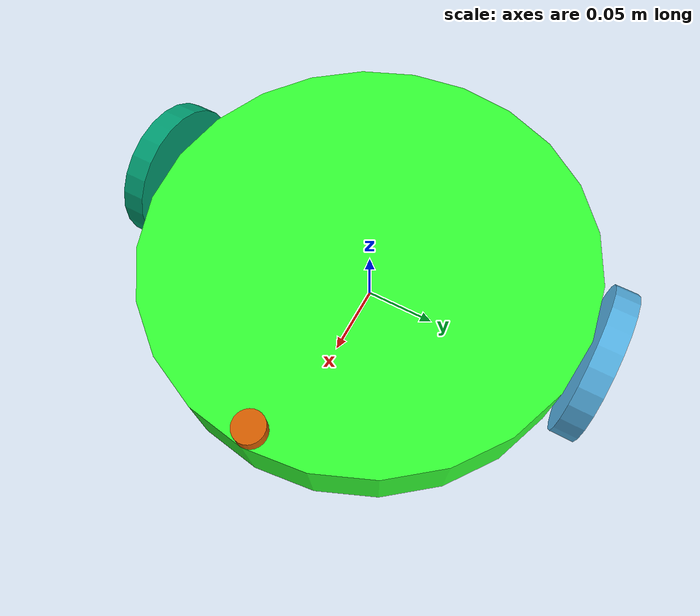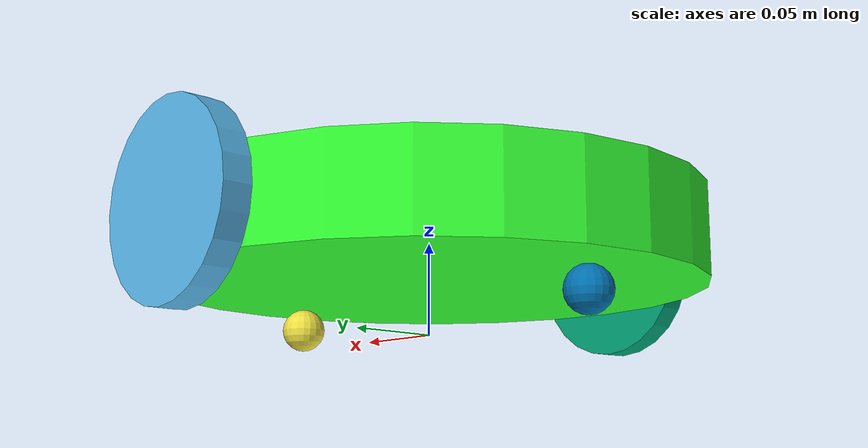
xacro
<?xml version="1.0"?>
<robot xmlns:xacro="http://www.ros.org/wiki/xacro" name="basic_robot">

    <xacro:property name="base_mass" value="1.00"/>
    <xacro:property name="base_radius" value=".150"/>
    <xacro:property name="base_thickness" value=".050"/>

    <xacro:property name="wheel_mass" value="0.10"/>
    <xacro:property name="turtle_wheel_radius" value=".050"/>
    <xacro:property name="turtle_wheel_length" value=".015"/>

    <xacro:property name="caster_mass" value="0.001"/>
    <xacro:property name="caster_radius" value="${(turtle_wheel_radius-base_thickness/2.0)/2.0}"/>

    <xacro:property name="lidar_mass" value="0.001"/>
    <xacro:property name="lidar_length" value="0.01"/>
    <xacro:property name="lidar_radius" value="0.01"/>

    <link name="base_link">
        <visual>
            <geometry>
                <cylinder length="${base_thickness}" radius="${base_radius}"/>
            </geometry>
            <material name="green">
                <color rgba="0.2 1.0 0.2 1"/>
            </material>
        </visual>
        <collision>
                <geometry>
                    <cylinder length="${base_thickness}" radius="${base_radius}"/>
                </geometry>
        </collision>
        <inertial>
            <mass value="${base_mass}"/>
            <inertia
                ixx="${(1.0/12.0) * base_mass * (3*base_radius*base_radius + base_thickness*base_thickness)}"
                iyy="${(1.0/12.0) * base_mass * (3*base_radius*base_radius + base_thickness*base_thickness)}"
                izz="${0.5 * base_mass * base_radius*base_radius}"
                ixy="0" ixz="0" iyz="0"/>
        </inertial>
    </link>

    <link name="left_wheel">
        <visual>
            <geometry>
                <cylinder length="${turtle_wheel_length}" radius="${turtle_wheel_radius}"/>
            </geometry>
        </visual>
        <collision>
                <geometry>
                    <cylinder length="${turtle_wheel_length}" radius="${turtle_wheel_radius}"/>
                </geometry>
        </collision>
        <inertial>
            <mass value="${wheel_mass}"/>
            <inertia
                ixx="${(1.0/12.0) * wheel_mass * (3*turtle_wheel_radius*turtle_wheel_radius + turtle_wheel_length*turtle_wheel_length)}"
                iyy="${(1.0/12.0) * wheel_mass * (3*turtle_wheel_radius*turtle_wheel_radius + turtle_wheel_length*turtle_wheel_length)}"
                izz="${0.5 * wheel_mass * turtle_wheel_radius*turtle_wheel_radius}"
                ixy="0" ixz="0" iyz="0"/>
        </inertial>
    </link>

    <link name="right_wheel">
        <visual>
            <geometry>
                <cylinder length="${turtle_wheel_length}" radius="${turtle_wheel_radius}"/>
            </geometry>
        </visual>
        <collision>
                <geometry>
                    <cylinder length="${turtle_wheel_length}" radius="${turtle_wheel_radius}"/>
                </geometry>
        </collision>
        <inertial>
            <mass value="${wheel_mass}"/>
            <inertia
                ixx="${(1.0/12.0) * wheel_mass * (3*turtle_wheel_radius*turtle_wheel_radius + turtle_wheel_length*turtle_wheel_length)}"
                iyy="${(1.0/12.0) * wheel_mass * (3*turtle_wheel_radius*turtle_wheel_radius + turtle_wheel_length*turtle_wheel_length)}"
                izz="${0.5 * wheel_mass * turtle_wheel_radius*turtle_wheel_radius}"
                ixy="0" ixz="0" iyz="0"/>
        </inertial>
    </link>

    <link name="caster_wheel_front">
        <visual>
            <geometry>
                <sphere radius="${caster_radius}"/>
            </geometry>
        </visual>
        <collision>
                <geometry>
                    <sphere radius="${caster_radius}"/>
                </geometry>
        </collision>
        <inertial>
            <mass value="${caster_mass}"/>
            <inertia
                ixx="${(2.0/5.0) * caster_mass * (caster_radius)*(caster_radius)}"
                iyy="${(2.0/5.0) * caster_mass * (caster_radius)*(caster_radius)}"
                izz="${(2.0/5.0) * caster_mass * (caster_radius)*(caster_radius)}"
                ixy="0" ixz="0" iyz="0"/>
        </inertial>
    </link>

    <link name="caster_wheel_back">
        <visual>
            <geometry>
                <sphere radius="${caster_radius}"/>
            </geometry>
        </visual>
        <collision>
                <geometry>
                    <sphere radius="${caster_radius}"/>
                </geometry>
        </collision>
        <inertial>
            <mass value="${caster_mass}"/>
            <inertia
                ixx="${(2.0/5.0) * caster_mass * (caster_radius)*(caster_radius)}"
                iyy="${(2.0/5.0) * caster_mass * (caster_radius)*(caster_radius)}"
                izz="${(2.0/5.0) * caster_mass * (caster_radius)*(caster_radius)}"
                ixy="0" ixz="0" iyz="0"/>
        </inertial>
    </link>

    <link name="lidar">
        <visual>
            <geometry>
                <cylinder length="${lidar_length}" radius="${lidar_radius}"/>
            </geometry>
        </visual>
        <collision>
            <geometry>
                <cylinder length="${lidar_length}" radius="${lidar_radius}"/>
            </geometry>
        </collision>
        <inertial>
            <mass value="${lidar_mass}"/>
            <inertia
                ixx="${(1.0/12.0) * lidar_mass * (3*lidar_radius*lidar_radius + lidar_length*lidar_length)}"
                iyy="${(1.0/12.0) * lidar_mass * (3*lidar_radius*lidar_radius + lidar_length*lidar_length)}"
                izz="${0.5 * lidar_mass * lidar_radius*lidar_radius}"
                ixy="0" ixz="0" iyz="0"/>
        </inertial>
    </link>

    <link name="base_footprint"/>

    <joint name="footprint_base" type="fixed">
        <parent link="base_footprint"/>
        <child link="base_link"/>
        <origin xyz="0 0 ${base_thickness}" rpy="0 0 0"/>
    </joint>

    <joint name="base_left_wheel" type="continuous">
        <parent link="base_link"/>
        <child link="left_wheel"/>
        <origin xyz="0 ${base_radius+turtle_wheel_length/2} 0" rpy="1.57075 0 0"/>
        <axis xyz="0 0 -1"/>
    </joint>

    <joint name="base_right_wheel" type="continuous">
        <parent link="base_link"/>
        <child link="right_wheel"/>
        <origin xyz ="0 -${base_radius+turtle_wheel_length/2} 0" rpy="1.57075 0 0"/>
        <axis xyz="0 0 -1"/>
    </joint>

    <joint name="base_caster_wheel_front" type="fixed">
        <parent link="base_link"/>
        <child link="caster_wheel_front"/>
        <origin xyz ="${base_radius-(base_radius/4)} 0 -${base_thickness/2.0+caster_radius}" rpy="0 0 0"/>
    </joint>

    <joint name="base_caster_wheel_back" type="fixed">
        <parent link="base_link"/>
        <child link="caster_wheel_back"/>
        <origin xyz ="-${base_radius-(base_radius/4)} 0 -${base_thickness/2.0+caster_radius}" rpy="0 0 0"/>
    </joint>

    <joint name="base_lidar" type="fixed">
        <parent link="base_link"/>
        <child link="lidar"/>
        <origin xyz="${base_radius-lidar_radius} 0 ${base_thickness/2.0+lidar_length/2.0}"/>
        <axis xyz="0 1 0" rpy="0 0 0"/>
    </joint>

    <gazebo reference="caster_wheel_front">
        <mu1 value="0.1"/>
        <mu2 value="0.1"/>
    </gazebo>

    <gazebo reference="caster_wheel_back">
        <mu1 value="0.1"/>
        <mu2 value="0.1"/>
    </gazebo>

    <gazebo>
        <plugin
            filename="gz-sim-diff-drive-system"
            name="gz::sim::systems::DiffDrive">

            <!-- wheel parameters -->
            <left_joint>base_left_wheel</left_joint>
            <right_joint>base_right_wheel</right_joint>

            <!-- kinematics -->
            <wheel_separation>${base_radius*2.0+turtle_wheel_length}</wheel_separation>
            <wheel_radius>${turtle_wheel_radius}</wheel_radius>

            <!-- output -->
            <frame_id>odom</frame_id>
            <child_frame_id>base_footprint</child_frame_id>
            <odom_publish_frequency>50</odom_publish_frequency>
        </plugin>
    </gazebo>

    <gazebo>
        <plugin
            filename="gz-sim-joint-state-publisher-system"
            name="gz::sim::systems::JointStatePublisher">

            <!-- Which joints to get published in Gazebo -->
            <joint_name>base_left_wheel</joint_name>
            <joint_name>base_right_wheel</joint_name>
        </plugin>
    </gazebo>

    <gazebo reference="lidar">
        <sensor name="gpu_lidar" type="gpu_lidar">
            <pose relative_to="lidar">0 0 0 0 0 0</pose>
            <topic>lidar</topic>
            <update_rate>10</update_rate>
            <ray>
                <scan>
                    <horizontal>
                        <samples>640</samples>
                        <resolution>1</resolution>
                        <min_angle>-1.396263</min_angle>
                        <max_angle>1.396263</max_angle>
                    </horizontal>
                    <vertical>
                        <samples>1</samples>
                        <resolution>0.01</resolution>
                        <min_angle>0</min_angle>
                        <max_angle>0</max_angle>
                    </vertical>
                </scan>
                <range>
                    <min>0.08</min>
                    <max>10.0</max>
                    <resolution>0.01</resolution>
                </range>
            </ray>
            <always_on>1</always_on>
            <visualize>true</visualize>
        </sensor>
    </gazebo>
</robot>
